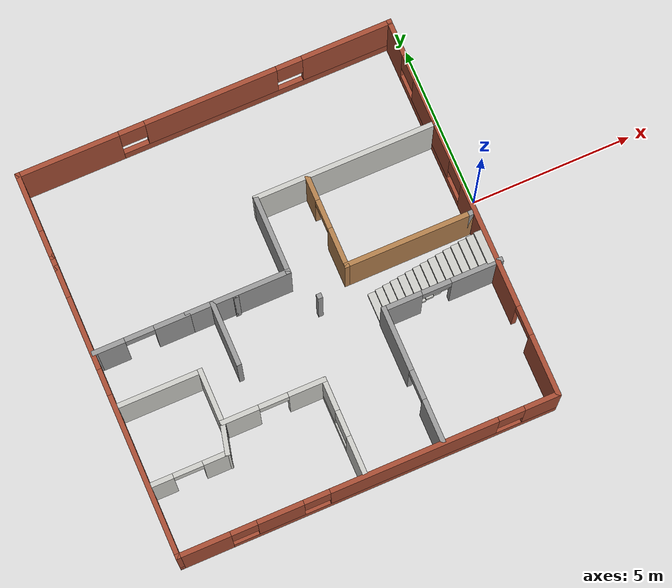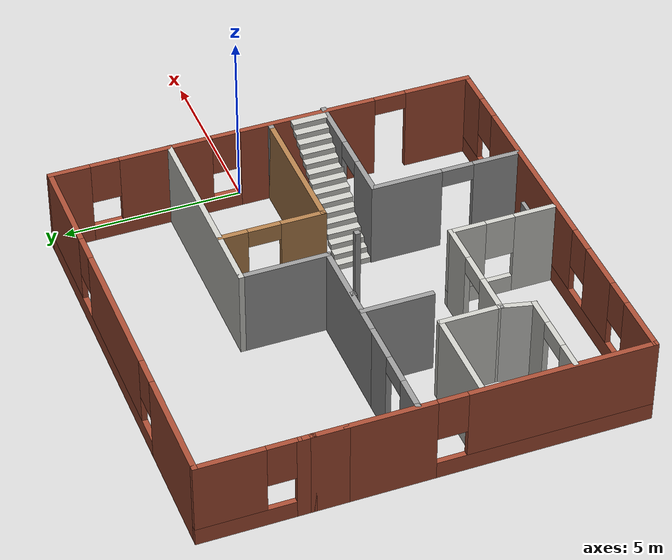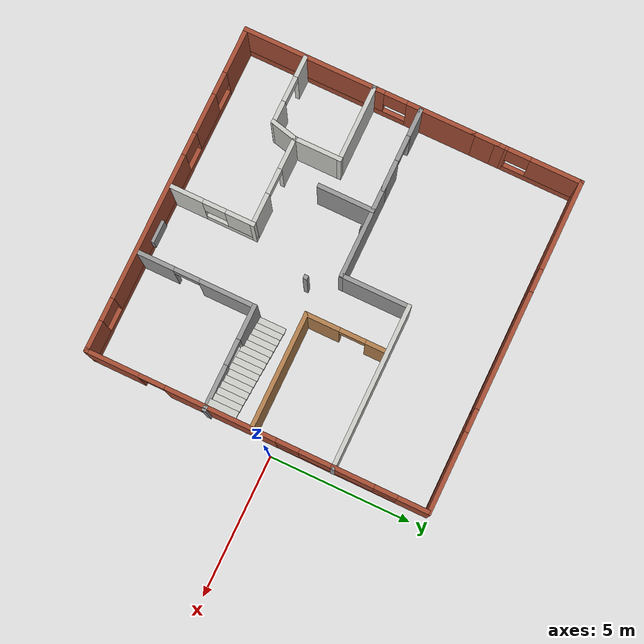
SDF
<sdf version="1.6">
 <model name="Building">
  <pose>-6.1852 -0.576906 0 0 -0 0</pose>
  <link name="Stairs_0">
   <visual name="Stairs_0_Visual_0">
    <pose>2.30777 -1.25113 0.083333 0 -0 1.5708</pose>
    <geometry><box><size>1 0.233333 0.166667</size></box></geometry>
    <material>
     <script><uri>file://media/materials/scripts/gazebo.material</uri><name>Gazebo/CeilingTiled</name></script>
     <ambient>1 1 1 1</ambient>
    </material>
    <meta><layer>0</layer></meta>
   </visual>
   <collision name="Stairs_0_Collision_0">
    <geometry><box><size>1 0.233333 0.166667</size></box></geometry>
    <pose>2.30777 -1.25113 0.083333 0 -0 1.5708</pose>
   </collision>
   <visual name="Stairs_0_Visual_1">
    <pose>2.5411 -1.25113 0.25 0 -0 1.5708</pose>
    <geometry><box><size>1 0.233333 0.166667</size></box></geometry>
    <material>
     <script><uri>file://media/materials/scripts/gazebo.material</uri><name>Gazebo/CeilingTiled</name></script>
     <ambient>1 1 1 1</ambient>
    </material>
    <meta><layer>0</layer></meta>
   </visual>
   <collision name="Stairs_0_Collision_1">
    <geometry><box><size>1 0.233333 0.166667</size></box></geometry>
    <pose>2.5411 -1.25113 0.25 0 -0 1.5708</pose>
   </collision>
   <visual name="Stairs_0_Visual_2">
    <pose>2.77444 -1.25113 0.416667 0 -0 1.5708</pose>
    <geometry><box><size>1 0.233333 0.166667</size></box></geometry>
    <material>
     <script><uri>file://media/materials/scripts/gazebo.material</uri><name>Gazebo/CeilingTiled</name></script>
     <ambient>1 1 1 1</ambient>
    </material>
    <meta><layer>0</layer></meta>
   </visual>
   <collision name="Stairs_0_Collision_2">
    <geometry><box><size>1 0.233333 0.166667</size></box></geometry>
    <pose>2.77444 -1.25113 0.416667 0 -0 1.5708</pose>
   </collision>
   <visual name="Stairs_0_Visual_3">
    <pose>3.00777 -1.25113 0.583333 0 -0 1.5708</pose>
    <geometry><box><size>1 0.233333 0.166667</size></box></geometry>
    <material>
     <script><uri>file://media/materials/scripts/gazebo.material</uri><name>Gazebo/CeilingTiled</name></script>
     <ambient>1 1 1 1</ambient>
    </material>
    <meta><layer>0</layer></meta>
   </visual>
   <collision name="Stairs_0_Collision_3">
    <geometry><box><size>1 0.233333 0.166667</size></box></geometry>
    <pose>3.00777 -1.25113 0.583333 0 -0 1.5708</pose>
   </collision>
   <visual name="Stairs_0_Visual_4">
    <pose>3.2411 -1.25113 0.75 0 -0 1.5708</pose>
    <geometry><box><size>1 0.233333 0.166667</size></box></geometry>
    <material>
     <script><uri>file://media/materials/scripts/gazebo.material</uri><name>Gazebo/CeilingTiled</name></script>
     <ambient>1 1 1 1</ambient>
    </material>
    <meta><layer>0</layer></meta>
   </visual>
   <collision name="Stairs_0_Collision_4">
    <geometry><box><size>1 0.233333 0.166667</size></box></geometry>
    <pose>3.2411 -1.25113 0.75 0 -0 1.5708</pose>
   </collision>
   <visual name="Stairs_0_Visual_5">
    <pose>3.47444 -1.25113 0.916667 0 -0 1.5708</pose>
    <geometry><box><size>1 0.233333 0.166667</size></box></geometry>
    <material>
     <script><uri>file://media/materials/scripts/gazebo.material</uri><name>Gazebo/CeilingTiled</name></script>
     <ambient>1 1 1 1</ambient>
    </material>
    <meta><layer>0</layer></meta>
   </visual>
   <collision name="Stairs_0_Collision_5">
    <geometry><box><size>1 0.233333 0.166667</size></box></geometry>
    <pose>3.47444 -1.25113 0.916667 0 -0 1.5708</pose>
   </collision>
   <visual name="Stairs_0_Visual_6">
    <pose>3.70777 -1.25113 1.08333 0 -0 1.5708</pose>
    <geometry><box><size>1 0.233333 0.166667</size></box></geometry>
    <material>
     <script><uri>file://media/materials/scripts/gazebo.material</uri><name>Gazebo/CeilingTiled</name></script>
     <ambient>1 1 1 1</ambient>
    </material>
    <meta><layer>0</layer></meta>
   </visual>
   <collision name="Stairs_0_Collision_6">
    <geometry><box><size>1 0.233333 0.166667</size></box></geometry>
    <pose>3.70777 -1.25113 1.08333 0 -0 1.5708</pose>
   </collision>
   <visual name="Stairs_0_Visual_7">
    <pose>3.9411 -1.25113 1.25 0 -0 1.5708</pose>
    <geometry><box><size>1 0.233333 0.166667</size></box></geometry>
    <material>
     <script><uri>file://media/materials/scripts/gazebo.material</uri><name>Gazebo/CeilingTiled</name></script>
     <ambient>1 1 1 1</ambient>
    </material>
    <meta><layer>0</layer></meta>
   </visual>
   <collision name="Stairs_0_Collision_7">
    <geometry><box><size>1 0.233333 0.166667</size></box></geometry>
    <pose>3.9411 -1.25113 1.25 0 -0 1.5708</pose>
   </collision>
   <visual name="Stairs_0_Visual_8">
    <pose>4.17444 -1.25113 1.41667 0 -0 1.5708</pose>
    <geometry><box><size>1 0.233333 0.166667</size></box></geometry>
    <material>
     <script><uri>file://media/materials/scripts/gazebo.material</uri><name>Gazebo/CeilingTiled</name></script>
     <ambient>1 1 1 1</ambient>
    </material>
    <meta><layer>0</layer></meta>
   </visual>
   <collision name="Stairs_0_Collision_8">
    <geometry><box><size>1 0.233333 0.166667</size></box></geometry>
    <pose>4.17444 -1.25113 1.41667 0 -0 1.5708</pose>
   </collision>
   <visual name="Stairs_0_Visual_9">
    <pose>4.40777 -1.25113 1.58333 0 -0 1.5708</pose>
    <geometry><box><size>1 0.233333 0.166667</size></box></geometry>
    <material>
     <script><uri>file://media/materials/scripts/gazebo.material</uri><name>Gazebo/CeilingTiled</name></script>
     <ambient>1 1 1 1</ambient>
    </material>
    <meta><layer>0</layer></meta>
   </visual>
   <collision name="Stairs_0_Collision_9">
    <geometry><box><size>1 0.233333 0.166667</size></box></geometry>
    <pose>4.40777 -1.25113 1.58333 0 -0 1.5708</pose>
   </collision>
   <visual name="Stairs_0_Visual_10">
    <pose>4.6411 -1.25113 1.75 0 -0 1.5708</pose>
    <geometry><box><size>1 0.233333 0.166667</size></box></geometry>
    <material>
     <script><uri>file://media/materials/scripts/gazebo.material</uri><name>Gazebo/CeilingTiled</name></script>
     <ambient>1 1 1 1</ambient>
    </material>
    <meta><layer>0</layer></meta>
   </visual>
   <collision name="Stairs_0_Collision_10">
    <geometry><box><size>1 0.233333 0.166667</size></box></geometry>
    <pose>4.6411 -1.25113 1.75 0 -0 1.5708</pose>
   </collision>
   <visual name="Stairs_0_Visual_11">
    <pose>4.87444 -1.25113 1.91667 0 -0 1.5708</pose>
    <geometry><box><size>1 0.233333 0.166667</size></box></geometry>
    <material>
     <script><uri>file://media/materials/scripts/gazebo.material</uri><name>Gazebo/CeilingTiled</name></script>
     <ambient>1 1 1 1</ambient>
    </material>
    <meta><layer>0</layer></meta>
   </visual>
   <collision name="Stairs_0_Collision_11">
    <geometry><box><size>1 0.233333 0.166667</size></box></geometry>
    <pose>4.87444 -1.25113 1.91667 0 -0 1.5708</pose>
   </collision>
   <visual name="Stairs_0_Visual_12">
    <pose>5.10777 -1.25113 2.08333 0 -0 1.5708</pose>
    <geometry><box><size>1 0.233333 0.166667</size></box></geometry>
    <material>
     <script><uri>file://media/materials/scripts/gazebo.material</uri><name>Gazebo/CeilingTiled</name></script>
     <ambient>1 1 1 1</ambient>
    </material>
    <meta><layer>0</layer></meta>
   </visual>
   <collision name="Stairs_0_Collision_12">
    <geometry><box><size>1 0.233333 0.166667</size></box></geometry>
    <pose>5.10777 -1.25113 2.08333 0 -0 1.5708</pose>
   </collision>
   <visual name="Stairs_0_Visual_13">
    <pose>5.3411 -1.25113 2.25 0 -0 1.5708</pose>
    <geometry><box><size>1 0.233333 0.166667</size></box></geometry>
    <material>
     <script><uri>file://media/materials/scripts/gazebo.material</uri><name>Gazebo/CeilingTiled</name></script>
     <ambient>1 1 1 1</ambient>
    </material>
    <meta><layer>0</layer></meta>
   </visual>
   <collision name="Stairs_0_Collision_13">
    <geometry><box><size>1 0.233333 0.166667</size></box></geometry>
    <pose>5.3411 -1.25113 2.25 0 -0 1.5708</pose>
   </collision>
   <visual name="Stairs_0_Visual_14">
    <pose>5.57444 -1.25113 2.41667 0 -0 1.5708</pose>
    <geometry><box><size>1 0.233333 0.166667</size></box></geometry>
    <material>
     <script><uri>file://media/materials/scripts/gazebo.material</uri><name>Gazebo/CeilingTiled</name></script>
     <ambient>1 1 1 1</ambient>
    </material>
    <meta><layer>0</layer></meta>
   </visual>
   <collision name="Stairs_0_Collision_14">
    <geometry><box><size>1 0.233333 0.166667</size></box></geometry>
    <pose>5.57444 -1.25113 2.41667 0 -0 1.5708</pose>
   </collision>
  </link>
  <link name="Wall_0">
   <pose>-5.83944 -1.9 0 0 0 -1.5708</pose>
   <visual name="Wall_0_Visual_0">
    <pose>-2.91813 0 1.25 0 -0 0</pose>
    <geometry><box><size>2.41374 0.15 2.5</size></box></geometry>
    <material>
     <script><uri>file://media/materials/scripts/gazebo.material</uri><name>Gazebo/Bricks</name></script>
     <ambient>1 1 1 1</ambient>
    </material>
    <meta><layer>0</layer></meta>
   </visual>
   <collision name="Wall_0_Collision_0">
    <geometry><box><size>2.41374 0.15 2.5</size></box></geometry>
    <pose>-2.91813 0 1.25 0 -0 0</pose>
   </collision>
   <visual name="Wall_0_Visual_1">
    <pose>1.20687 0 0.25 0 -0 0</pose>
    <geometry><box><size>5.83626 0.15 0.5</size></box></geometry>
    <material>
     <script><uri>file://media/materials/scripts/gazebo.material</uri><name>Gazebo/Bricks</name></script>
     <ambient>1 1 1 1</ambient>
    </material>
    <meta><layer>0</layer></meta>
   </visual>
   <collision name="Wall_0_Collision_1">
    <geometry><box><size>5.83626 0.15 0.5</size></box></geometry>
    <pose>1.20687 0 0.25 0 -0 0</pose>
   </collision>
   <visual name="Wall_0_Visual_2">
    <pose>1.60687 0 1.5 0 -0 0</pose>
    <geometry><box><size>5.03626 0.15 2</size></box></geometry>
    <material>
     <script><uri>file://media/materials/scripts/gazebo.material</uri><name>Gazebo/Bricks</name></script>
     <ambient>1 1 1 1</ambient>
    </material>
    <meta><layer>0</layer></meta>
   </visual>
   <collision name="Wall_0_Collision_2">
    <geometry><box><size>5.03626 0.15 2</size></box></geometry>
    <pose>1.60687 0 1.5 0 -0 0</pose>
   </collision>
   <visual name="Wall_0_Visual_3">
    <pose>-1.31126 0 1.9 0 -0 0</pose>
    <geometry><box><size>0.8 0.15 1.2</size></box></geometry>
    <material>
     <script><uri>file://media/materials/scripts/gazebo.material</uri><name>Gazebo/Bricks</name></script>
     <ambient>1 1 1 1</ambient>
    </material>
    <meta><layer>0</layer></meta>
   </visual>
   <collision name="Wall_0_Collision_3">
    <geometry><box><size>0.8 0.15 1.2</size></box></geometry>
    <pose>-1.31126 0 1.9 0 -0 0</pose>
   </collision>
  </link>
  <link name="Wall_1">
   <pose>-0.039438 -5.95 0 0 -0 0</pose>
   <visual name="Wall_1_Visual_0">
    <pose>-5.03898 0 1.25 0 -0 0</pose>
    <geometry><box><size>1.67205 0.15 2.5</size></box></geometry>
    <material>
     <script><uri>file://media/materials/scripts/gazebo.material</uri><name>Gazebo/Bricks</name></script>
     <ambient>1 1 1 1</ambient>
    </material>
    <meta><layer>0</layer></meta>
   </visual>
   <collision name="Wall_1_Collision_0">
    <geometry><box><size>1.67205 0.15 2.5</size></box></geometry>
    <pose>-5.03898 0 1.25 0 -0 0</pose>
   </collision>
   <visual name="Wall_1_Visual_1">
    <pose>0.836024 0 0.25 0 -0 0</pose>
    <geometry><box><size>10.078 0.15 0.5</size></box></geometry>
    <material>
     <script><uri>file://media/materials/scripts/gazebo.material</uri><name>Gazebo/Bricks</name></script>
     <ambient>1 1 1 1</ambient>
    </material>
    <meta><layer>0</layer></meta>
   </visual>
   <collision name="Wall_1_Collision_1">
    <geometry><box><size>10.078 0.15 0.5</size></box></geometry>
    <pose>0.836024 0 0.25 0 -0 0</pose>
   </collision>
   <visual name="Wall_1_Visual_2">
    <pose>-2.69545 0 1.5 0 -0 0</pose>
    <geometry><box><size>1.415 0.15 2</size></box></geometry>
    <material>
     <script><uri>file://media/materials/scripts/gazebo.material</uri><name>Gazebo/Bricks</name></script>
     <ambient>1 1 1 1</ambient>
    </material>
    <meta><layer>0</layer></meta>
   </visual>
   <collision name="Wall_1_Collision_2">
    <geometry><box><size>1.415 0.15 2</size></box></geometry>
    <pose>-2.69545 0 1.5 0 -0 0</pose>
   </collision>
   <visual name="Wall_1_Visual_3">
    <pose>1.38846 0 1.5 0 -0 0</pose>
    <geometry><box><size>5.15282 0.15 2</size></box></geometry>
    <material>
     <script><uri>file://media/materials/scripts/gazebo.material</uri><name>Gazebo/Bricks</name></script>
     <ambient>1 1 1 1</ambient>
    </material>
    <meta><layer>0</layer></meta>
   </visual>
   <collision name="Wall_1_Collision_3">
    <geometry><box><size>5.15282 0.15 2</size></box></geometry>
    <pose>1.38846 0 1.5 0 -0 0</pose>
   </collision>
   <visual name="Wall_1_Visual_4">
    <pose>5.31994 0 1.5 0 -0 0</pose>
    <geometry><box><size>1.11013 0.15 2</size></box></geometry>
    <material>
     <script><uri>file://media/materials/scripts/gazebo.material</uri><name>Gazebo/Bricks</name></script>
     <ambient>1 1 1 1</ambient>
    </material>
    <meta><layer>0</layer></meta>
   </visual>
   <collision name="Wall_1_Collision_4">
    <geometry><box><size>1.11013 0.15 2</size></box></geometry>
    <pose>5.31994 0 1.5 0 -0 0</pose>
   </collision>
   <visual name="Wall_1_Visual_5">
    <pose>-3.80295 0 1.9 0 -0 0</pose>
    <geometry><box><size>0.8 0.15 1.2</size></box></geometry>
    <material>
     <script><uri>file://media/materials/scripts/gazebo.material</uri><name>Gazebo/Bricks</name></script>
     <ambient>1 1 1 1</ambient>
    </material>
    <meta><layer>0</layer></meta>
   </visual>
   <collision name="Wall_1_Collision_5">
    <geometry><box><size>0.8 0.15 1.2</size></box></geometry>
    <pose>-3.80295 0 1.9 0 -0 0</pose>
   </collision>
   <visual name="Wall_1_Visual_6">
    <pose>-1.58795 0 1.9 0 -0 0</pose>
    <geometry><box><size>0.8 0.15 1.2</size></box></geometry>
    <material>
     <script><uri>file://media/materials/scripts/gazebo.material</uri><name>Gazebo/Bricks</name></script>
     <ambient>1 1 1 1</ambient>
    </material>
    <meta><layer>0</layer></meta>
   </visual>
   <collision name="Wall_1_Collision_6">
    <geometry><box><size>0.8 0.15 1.2</size></box></geometry>
    <pose>-1.58795 0 1.9 0 -0 0</pose>
   </collision>
   <visual name="Wall_1_Visual_7">
    <pose>4.36487 0 1.9 0 -0 0</pose>
    <geometry><box><size>0.8 0.15 1.2</size></box></geometry>
    <material>
     <script><uri>file://media/materials/scripts/gazebo.material</uri><name>Gazebo/Bricks</name></script>
     <ambient>1 1 1 1</ambient>
    </material>
    <meta><layer>0</layer></meta>
   </visual>
   <collision name="Wall_1_Collision_7">
    <geometry><box><size>0.8 0.15 1.2</size></box></geometry>
    <pose>4.36487 0 1.9 0 -0 0</pose>
   </collision>
  </link>
  <link name="Wall_10">
   <pose>4.03944 -1.77537 0 0 -0 0</pose>
   <visual name="Wall_10_Visual_0">
    <pose>-1.25521 0 1.25 0 -0 0</pose>
    <geometry><box><size>1.23958 0.15 2.5</size></box></geometry>
    <material>
     <script><uri>file://media/materials/scripts/gazebo.material</uri><name>Gazebo/Grey</name></script>
     <ambient>1 1 1 1</ambient>
    </material>
    <meta><layer>0</layer></meta>
   </visual>
   <collision name="Wall_10_Collision_0">
    <geometry><box><size>1.23958 0.15 2.5</size></box></geometry>
    <pose>-1.25521 0 1.25 0 -0 0</pose>
   </collision>
   <visual name="Wall_10_Visual_1">
    <pose>1.06979 0 1.25 0 -0 0</pose>
    <geometry><box><size>1.61042 0.15 2.5</size></box></geometry>
    <material>
     <script><uri>file://media/materials/scripts/gazebo.material</uri><name>Gazebo/Grey</name></script>
     <ambient>1 1 1 1</ambient>
    </material>
    <meta><layer>0</layer></meta>
   </visual>
   <collision name="Wall_10_Collision_1">
    <geometry><box><size>1.61042 0.15 2.5</size></box></geometry>
    <pose>1.06979 0 1.25 0 -0 0</pose>
   </collision>
   <visual name="Wall_10_Visual_2">
    <pose>-0.185424 0 2.25 0 -0 0</pose>
    <geometry><box><size>0.9 0.15 0.5</size></box></geometry>
    <material>
     <script><uri>file://media/materials/scripts/gazebo.material</uri><name>Gazebo/Grey</name></script>
     <ambient>1 1 1 1</ambient>
    </material>
    <meta><layer>0</layer></meta>
   </visual>
   <collision name="Wall_10_Collision_2">
    <geometry><box><size>0.9 0.15 0.5</size></box></geometry>
    <pose>-0.185424 0 2.25 0 -0 0</pose>
   </collision>
  </link>
  <link name="Wall_12">
   <pose>-0.133296 -4.39447 0 0 -0 1.5708</pose>
   <visual name="Wall_12_Visual_0">
    <pose>-0.916045 0 1.25 0 -0 0</pose>
    <geometry><box><size>1.16791 0.15 2.5</size></box></geometry>
    <material>
     <script><uri>file://media/materials/scripts/gazebo.material</uri><name>Gazebo/CeilingTiled</name></script>
     <ambient>0.760784 0.662745 0.627451 1</ambient>
    </material>
    <meta><layer>0</layer></meta>
   </visual>
   <collision name="Wall_12_Collision_0">
    <geometry><box><size>1.16791 0.15 2.5</size></box></geometry>
    <pose>-0.916045 0 1.25 0 -0 0</pose>
   </collision>
   <visual name="Wall_12_Visual_1">
    <pose>0.583955 0 0.25 0 -0 0</pose>
    <geometry><box><size>1.83209 0.15 0.5</size></box></geometry>
    <material>
     <script><uri>file://media/materials/scripts/gazebo.material</uri><name>Gazebo/CeilingTiled</name></script>
     <ambient>0.760784 0.662745 0.627451 1</ambient>
    </material>
    <meta><layer>0</layer></meta>
   </visual>
   <collision name="Wall_12_Collision_1">
    <geometry><box><size>1.83209 0.15 0.5</size></box></geometry>
    <pose>0.583955 0 0.25 0 -0 0</pose>
   </collision>
   <visual name="Wall_12_Visual_2">
    <pose>0.983955 0 1.5 0 -0 0</pose>
    <geometry><box><size>1.03209 0.15 2</size></box></geometry>
    <material>
     <script><uri>file://media/materials/scripts/gazebo.material</uri><name>Gazebo/CeilingTiled</name></script>
     <ambient>0.760784 0.662745 0.627451 1</ambient>
    </material>
    <meta><layer>0</layer></meta>
   </visual>
   <collision name="Wall_12_Collision_2">
    <geometry><box><size>1.03209 0.15 2</size></box></geometry>
    <pose>0.983955 0 1.5 0 -0 0</pose>
   </collision>
   <visual name="Wall_12_Visual_3">
    <pose>0.06791 0 1.9 0 -0 0</pose>
    <geometry><box><size>0.8 0.15 1.2</size></box></geometry>
    <material>
     <script><uri>file://media/materials/scripts/gazebo.material</uri><name>Gazebo/CeilingTiled</name></script>
     <ambient>0.760784 0.662745 0.627451 1</ambient>
    </material>
    <meta><layer>0</layer></meta>
   </visual>
   <collision name="Wall_12_Collision_3">
    <geometry><box><size>0.8 0.15 1.2</size></box></geometry>
    <pose>0.06791 0 1.9 0 -0 0</pose>
   </collision>
  </link>
  <link name="Wall_13">
   <pose>-1.6833 -2.96947 0 0 -0 3.14159</pose>
   <visual name="Wall_13_Visual_0">
    <pose>-1.03974 0 1.25 0 -0 0</pose>
    <geometry><box><size>1.17053 0.15 2.5</size></box></geometry>
    <material>
     <script><uri>file://media/materials/scripts/gazebo.material</uri><name>Gazebo/CeilingTiled</name></script>
     <ambient>0.760784 0.662745 0.627451 1</ambient>
    </material>
    <meta><layer>0</layer></meta>
   </visual>
   <collision name="Wall_13_Collision_0">
    <geometry><box><size>1.17053 0.15 2.5</size></box></geometry>
    <pose>-1.03974 0 1.25 0 -0 0</pose>
   </collision>
   <visual name="Wall_13_Visual_1">
    <pose>1.03527 0 1.25 0 -0 0</pose>
    <geometry><box><size>1.17947 0.15 2.5</size></box></geometry>
    <material>
     <script><uri>file://media/materials/scripts/gazebo.material</uri><name>Gazebo/CeilingTiled</name></script>
     <ambient>0.760784 0.662745 0.627451 1</ambient>
    </material>
    <meta><layer>0</layer></meta>
   </visual>
   <collision name="Wall_13_Collision_1">
    <geometry><box><size>1.17947 0.15 2.5</size></box></geometry>
    <pose>1.03527 0 1.25 0 -0 0</pose>
   </collision>
   <visual name="Wall_13_Visual_2">
    <pose>-0.00447 0 2.25 0 -0 0</pose>
    <geometry><box><size>0.9 0.15 0.5</size></box></geometry>
    <material>
     <script><uri>file://media/materials/scripts/gazebo.material</uri><name>Gazebo/CeilingTiled</name></script>
     <ambient>0.760784 0.662745 0.627451 1</ambient>
    </material>
    <meta><layer>0</layer></meta>
   </visual>
   <collision name="Wall_13_Collision_2">
    <geometry><box><size>0.9 0.15 0.5</size></box></geometry>
    <pose>-0.00447 0 2.25 0 -0 0</pose>
   </collision>
  </link>
  <link name="Wall_14">
   <collision name="Wall_14_Collision">
    <geometry><box><size>1.75 0.15 2.5</size></box></geometry>
    <pose>0 0 1.25 0 -0 0</pose>
   </collision>
   <visual name="Wall_14_Visual">
    <pose>0 0 1.25 0 -0 0</pose>
    <geometry><box><size>1.75 0.15 2.5</size></box></geometry>
    <material>
     <script><uri>file://media/materials/scripts/gazebo.material</uri><name>Gazebo/CeilingTiled</name></script>
     <ambient>1 1 1 1</ambient>
    </material>
    <meta><layer>0</layer></meta>
   </visual>
   <pose>-3.2333 -2.16947 0 0 -0 1.5708</pose>
  </link>
  <link name="Wall_15">
   <collision name="Wall_15_Collision">
    <geometry><box><size>2.75 0.15 2.5</size></box></geometry>
    <pose>0 0 1.25 0 -0 0</pose>
   </collision>
   <visual name="Wall_15_Visual">
    <pose>0 0 1.25 0 -0 0</pose>
    <geometry><box><size>2.75 0.15 2.5</size></box></geometry>
    <material>
     <script><uri>file://media/materials/scripts/gazebo.material</uri><name>Gazebo/CeilingTiled</name></script>
     <ambient>1 1 1 1</ambient>
    </material>
    <meta><layer>0</layer></meta>
   </visual>
   <pose>-4.5333 -1.36947 0 0 -0 3.14159</pose>
  </link>
  <link name="Wall_16">
   <collision name="Wall_16_Collision">
    <geometry><box><size>0.15 0.15 2.5</size></box></geometry>
    <pose>0 0 1.25 0 -0 0</pose>
   </collision>
   <visual name="Wall_16_Visual">
    <pose>0 0 1.25 0 -0 0</pose>
    <geometry><box><size>0.15 0.15 2.5</size></box></geometry>
    <material>
     <script><uri>file://media/materials/scripts/gazebo.material</uri><name>Gazebo/Grey</name></script>
     <ambient>1 1 1 1</ambient>
    </material>
    <meta><layer>0</layer></meta>
   </visual>
   <pose>-5.8333 -1.36947 0 0 -0 0</pose>
  </link>
  <link name="Wall_18">
   <pose>1.7604 1.2188 0 0 0 -1.5708</pose>
   <visual name="Wall_18_Visual_0">
    <pose>-1.07615 0 1.25 0 -0 0</pose>
    <geometry><box><size>0.804732 0.15 2.5</size></box></geometry>
    <material>
     <script><uri>file://media/materials/scripts/gazebo.material</uri><name>Gazebo/Wood</name></script>
     <ambient>1 1 1 1</ambient>
    </material>
    <meta><layer>0</layer></meta>
   </visual>
   <collision name="Wall_18_Collision_0">
    <geometry><box><size>0.804732 0.15 2.5</size></box></geometry>
    <pose>-1.07615 0 1.25 0 -0 0</pose>
   </collision>
   <visual name="Wall_18_Visual_1">
    <pose>0.852366 0 1.25 0 -0 0</pose>
    <geometry><box><size>1.2523 0.15 2.5</size></box></geometry>
    <material>
     <script><uri>file://media/materials/scripts/gazebo.material</uri><name>Gazebo/Wood</name></script>
     <ambient>1 1 1 1</ambient>
    </material>
    <meta><layer>0</layer></meta>
   </visual>
   <collision name="Wall_18_Collision_1">
    <geometry><box><size>1.2523 0.15 2.5</size></box></geometry>
    <pose>0.852366 0 1.25 0 -0 0</pose>
   </collision>
   <visual name="Wall_18_Visual_2">
    <pose>-0.223783 0 2.25 0 -0 0</pose>
    <geometry><box><size>0.9 0.15 0.5</size></box></geometry>
    <material>
     <script><uri>file://media/materials/scripts/gazebo.material</uri><name>Gazebo/Wood</name></script>
     <ambient>1 1 1 1</ambient>
    </material>
    <meta><layer>0</layer></meta>
   </visual>
   <collision name="Wall_18_Collision_2">
    <geometry><box><size>0.9 0.15 0.5</size></box></geometry>
    <pose>-0.223783 0 2.25 0 -0 0</pose>
   </collision>
  </link>
  <link name="Wall_19">
   <collision name="Wall_19_Collision">
    <geometry><box><size>4 0.15 2.5</size></box></geometry>
    <pose>0 0 1.25 0 -0 0</pose>
   </collision>
   <visual name="Wall_19_Visual">
    <pose>0 0 1.25 0 -0 0</pose>
    <geometry><box><size>4 0.15 2.5</size></box></geometry>
    <material>
     <script><uri>file://media/materials/scripts/gazebo.material</uri><name>Gazebo/Wood</name></script>
     <ambient>1 1 1 1</ambient>
    </material>
    <meta><layer>0</layer></meta>
   </visual>
   <pose>3.69833 -0.184696 0 0 -0 0</pose>
  </link>
  <link name="Wall_2">
   <pose>5.76056 -1.65 0 0 -0 1.5708</pose>
   <visual name="Wall_2_Visual_0">
    <pose>-3.41528 0 1.25 0 -0 0</pose>
    <geometry><box><size>1.91943 0.15 2.5</size></box></geometry>
    <material>
     <script><uri>file://media/materials/scripts/gazebo.material</uri><name>Gazebo/Bricks</name></script>
     <ambient>1 1 1 1</ambient>
    </material>
    <meta><layer>0</layer></meta>
   </visual>
   <collision name="Wall_2_Collision_0">
    <geometry><box><size>1.91943 0.15 2.5</size></box></geometry>
    <pose>-3.41528 0 1.25 0 -0 0</pose>
   </collision>
   <visual name="Wall_2_Visual_1">
    <pose>0.38347 0 1.25 0 -0 0</pose>
    <geometry><box><size>3.87808 0.15 2.5</size></box></geometry>
    <material>
     <script><uri>file://media/materials/scripts/gazebo.material</uri><name>Gazebo/Bricks</name></script>
     <ambient>1 1 1 1</ambient>
    </material>
    <meta><layer>0</layer></meta>
   </visual>
   <collision name="Wall_2_Collision_1">
    <geometry><box><size>3.87808 0.15 2.5</size></box></geometry>
    <pose>0.38347 0 1.25 0 -0 0</pose>
   </collision>
   <visual name="Wall_2_Visual_2">
    <pose>3.34875 0 0.25 0 -0 0</pose>
    <geometry><box><size>2.05249 0.15 0.5</size></box></geometry>
    <material>
     <script><uri>file://media/materials/scripts/gazebo.material</uri><name>Gazebo/Bricks</name></script>
     <ambient>1 1 1 1</ambient>
    </material>
    <meta><layer>0</layer></meta>
   </visual>
   <collision name="Wall_2_Collision_2">
    <geometry><box><size>2.05249 0.15 0.5</size></box></geometry>
    <pose>3.34875 0 0.25 0 -0 0</pose>
   </collision>
   <visual name="Wall_2_Visual_3">
    <pose>3.74875 0 1.5 0 -0 0</pose>
    <geometry><box><size>1.25249 0.15 2</size></box></geometry>
    <material>
     <script><uri>file://media/materials/scripts/gazebo.material</uri><name>Gazebo/Bricks</name></script>
     <ambient>1 1 1 1</ambient>
    </material>
    <meta><layer>0</layer></meta>
   </visual>
   <collision name="Wall_2_Collision_3">
    <geometry><box><size>1.25249 0.15 2</size></box></geometry>
    <pose>3.74875 0 1.5 0 -0 0</pose>
   </collision>
   <visual name="Wall_2_Visual_4">
    <pose>2.72251 0 1.9 0 -0 0</pose>
    <geometry><box><size>0.8 0.15 1.2</size></box></geometry>
    <material>
     <script><uri>file://media/materials/scripts/gazebo.material</uri><name>Gazebo/Bricks</name></script>
     <ambient>1 1 1 1</ambient>
    </material>
    <meta><layer>0</layer></meta>
   </visual>
   <collision name="Wall_2_Collision_4">
    <geometry><box><size>0.8 0.15 1.2</size></box></geometry>
    <pose>2.72251 0 1.9 0 -0 0</pose>
   </collision>
   <visual name="Wall_2_Visual_5">
    <pose>-2.00557 0 2.25 0 -0 0</pose>
    <geometry><box><size>0.9 0.15 0.5</size></box></geometry>
    <material>
     <script><uri>file://media/materials/scripts/gazebo.material</uri><name>Gazebo/Bricks</name></script>
     <ambient>1 1 1 1</ambient>
    </material>
    <meta><layer>0</layer></meta>
   </visual>
   <collision name="Wall_2_Collision_5">
    <geometry><box><size>0.9 0.15 0.5</size></box></geometry>
    <pose>-2.00557 0 2.25 0 -0 0</pose>
   </collision>
  </link>
  <link name="Wall_20">
   <collision name="Wall_20_Collision">
    <geometry><box><size>0.15 0.15 2.5</size></box></geometry>
    <pose>0 0 1.25 0 -0 0</pose>
   </collision>
   <visual name="Wall_20_Visual">
    <pose>0 0 1.25 0 -0 0</pose>
    <geometry><box><size>0.15 0.15 2.5</size></box></geometry>
    <material>
     <script><uri>file://media/materials/scripts/gazebo.material</uri><name>Gazebo/Grey</name></script>
     <ambient>1 1 1 1</ambient>
    </material>
    <meta><layer>0</layer></meta>
   </visual>
   <pose>5.62333 -0.184696 0 0 -0 0</pose>
  </link>
  <link name="Wall_22">
   <pose>-4.36444 0.3 0 0 -0 3.14159</pose>
   <visual name="Wall_22_Visual_0">
    <pose>-0.951516 0 1.25 0 -0 0</pose>
    <geometry><box><size>1.09697 0.15 2.5</size></box></geometry>
    <material>
     <script><uri>file://media/materials/scripts/gazebo.material</uri><name>Gazebo/Grey</name></script>
     <ambient>1 1 1 1</ambient>
    </material>
    <meta><layer>0</layer></meta>
   </visual>
   <collision name="Wall_22_Collision_0">
    <geometry><box><size>1.09697 0.15 2.5</size></box></geometry>
    <pose>-0.951516 0 1.25 0 -0 0</pose>
   </collision>
   <visual name="Wall_22_Visual_1">
    <pose>0.998484 0 1.25 0 -0 0</pose>
    <geometry><box><size>1.00303 0.15 2.5</size></box></geometry>
    <material>
     <script><uri>file://media/materials/scripts/gazebo.material</uri><name>Gazebo/Grey</name></script>
     <ambient>1 1 1 1</ambient>
    </material>
    <meta><layer>0</layer></meta>
   </visual>
   <collision name="Wall_22_Collision_1">
    <geometry><box><size>1.00303 0.15 2.5</size></box></geometry>
    <pose>0.998484 0 1.25 0 -0 0</pose>
   </collision>
   <visual name="Wall_22_Visual_2">
    <pose>0.046968 0 2.25 0 -0 0</pose>
    <geometry><box><size>0.9 0.15 0.5</size></box></geometry>
    <material>
     <script><uri>file://media/materials/scripts/gazebo.material</uri><name>Gazebo/Grey</name></script>
     <ambient>1 1 1 1</ambient>
    </material>
    <meta><layer>0</layer></meta>
   </visual>
   <collision name="Wall_22_Collision_2">
    <geometry><box><size>0.9 0.15 0.5</size></box></geometry>
    <pose>0.046968 0 2.25 0 -0 0</pose>
   </collision>
  </link>
  <link name="Wall_23">
   <collision name="Wall_23_Collision">
    <geometry><box><size>0.15 0.15 2.5</size></box></geometry>
    <pose>0 0 1.25 0 -0 0</pose>
   </collision>
   <visual name="Wall_23_Visual">
    <pose>0 0 1.25 0 -0 0</pose>
    <geometry><box><size>0.15 0.15 2.5</size></box></geometry>
    <material>
     <script><uri>file://media/materials/scripts/gazebo.material</uri><name>Gazebo/Grey</name></script>
     <ambient>1 1 1 1</ambient>
    </material>
    <meta><layer>0</layer></meta>
   </visual>
   <pose>-5.78944 0.3 0 0 -0 0</pose>
  </link>
  <link name="Wall_25">
   <collision name="Wall_25_Collision">
    <geometry><box><size>2 0.15 2.5</size></box></geometry>
    <pose>0 0 1.25 0 -0 0</pose>
   </collision>
   <visual name="Wall_25_Visual">
    <pose>0 0 1.25 0 -0 0</pose>
    <geometry><box><size>2 0.15 2.5</size></box></geometry>
    <material>
     <script><uri>file://media/materials/scripts/gazebo.material</uri><name>Gazebo/Grey</name></script>
     <ambient>1 1 1 1</ambient>
    </material>
    <meta><layer>0</layer></meta>
   </visual>
   <pose>-2.16346 -0.644844 0 0 0 -1.5708</pose>
  </link>
  <link name="Wall_28">
   <collision name="Wall_28_Collision">
    <geometry><box><size>0.15 0.15 2.5</size></box></geometry>
    <pose>0 0 1.25 0 -0 0</pose>
   </collision>
   <visual name="Wall_28_Visual">
    <pose>0 0 1.25 0 -0 0</pose>
    <geometry><box><size>0.15 0.15 2.5</size></box></geometry>
    <material>
     <script><uri>file://media/materials/scripts/gazebo.material</uri><name>Gazebo/Grey</name></script>
     <ambient>1 1 1 1</ambient>
    </material>
    <meta><layer>0</layer></meta>
   </visual>
   <pose>0.160561 0.3 0 0 -0 0</pose>
  </link>
  <link name="Wall_3">
   <collision name="Wall_3_Collision">
    <geometry><box><size>5.75 0.15 2.5</size></box></geometry>
    <pose>0 0 1.25 0 -0 0</pose>
   </collision>
   <visual name="Wall_3_Visual">
    <pose>0 0 1.25 0 -0 0</pose>
    <geometry><box><size>5.75 0.15 2.5</size></box></geometry>
    <material>
     <script><uri>file://media/materials/scripts/gazebo.material</uri><name>Gazebo/CeilingTiled</name></script>
     <ambient>1 1 1 1</ambient>
    </material>
    <meta><layer>0</layer></meta>
   </visual>
   <pose>2.96056 2.65 0 0 -0 3.14159</pose>
  </link>
  <link name="Wall_30">
   <pose>-4.61314 -3.81517 0 0 -0 0</pose>
   <visual name="Wall_30_Visual_0">
    <pose>-0.862208 0 1.25 0 -0 0</pose>
    <geometry><box><size>0.775583 0.15 2.5</size></box></geometry>
    <material>
     <script><uri>file://media/materials/scripts/gazebo.material</uri><name>Gazebo/CeilingTiled</name></script>
     <ambient>0.760784 0.662745 0.627451 1</ambient>
    </material>
    <meta><layer>0</layer></meta>
   </visual>
   <collision name="Wall_30_Collision_0">
    <geometry><box><size>0.775583 0.15 2.5</size></box></geometry>
    <pose>-0.862208 0 1.25 0 -0 0</pose>
   </collision>
   <visual name="Wall_30_Visual_1">
    <pose>0.837792 0 1.25 0 -0 0</pose>
    <geometry><box><size>0.824417 0.15 2.5</size></box></geometry>
    <material>
     <script><uri>file://media/materials/scripts/gazebo.material</uri><name>Gazebo/CeilingTiled</name></script>
     <ambient>0.760784 0.662745 0.627451 1</ambient>
    </material>
    <meta><layer>0</layer></meta>
   </visual>
   <collision name="Wall_30_Collision_1">
    <geometry><box><size>0.824417 0.15 2.5</size></box></geometry>
    <pose>0.837792 0 1.25 0 -0 0</pose>
   </collision>
   <visual name="Wall_30_Visual_2">
    <pose>-0.024417 0 2.25 0 -0 0</pose>
    <geometry><box><size>0.9 0.15 0.5</size></box></geometry>
    <material>
     <script><uri>file://media/materials/scripts/gazebo.material</uri><name>Gazebo/CeilingTiled</name></script>
     <ambient>0.760784 0.662745 0.627451 1</ambient>
    </material>
    <meta><layer>0</layer></meta>
   </visual>
   <collision name="Wall_30_Collision_2">
    <geometry><box><size>0.9 0.15 0.5</size></box></geometry>
    <pose>-0.024417 0 2.25 0 -0 0</pose>
   </collision>
  </link>
  <link name="Wall_31">
   <collision name="Wall_31_Collision">
    <geometry><box><size>1.02015 0.15 2.5</size></box></geometry>
    <pose>0 0 1.25 0 -0 0</pose>
   </collision>
   <visual name="Wall_31_Visual">
    <pose>0 0 1.25 0 -0 0</pose>
    <geometry><box><size>1.02015 0.15 2.5</size></box></geometry>
    <material>
     <script><uri>file://media/materials/scripts/gazebo.material</uri><name>Gazebo/CeilingTiled</name></script>
     <ambient>0.760784 0.662745 0.627451 1</ambient>
    </material>
    <meta><layer>0</layer></meta>
   </visual>
   <pose>-3.33572 -3.39232 0 0 -0 1.33316</pose>
  </link>
  <link name="Wall_32">
   <collision name="Wall_32_Collision">
    <geometry><box><size>0.15 0.15 2.5</size></box></geometry>
    <pose>0 0 1.25 0 -0 0</pose>
   </collision>
   <visual name="Wall_32_Visual">
    <pose>0 0 1.25 0 -0 0</pose>
    <geometry><box><size>0.15 0.15 2.5</size></box></geometry>
    <material>
     <script><uri>file://media/materials/scripts/gazebo.material</uri><name>Gazebo/Grey</name></script>
     <ambient>1 1 1 1</ambient>
    </material>
    <meta><layer>0</layer></meta>
   </visual>
   <pose>-3.2333 -2.96947 0 0 -0 0</pose>
  </link>
  <link name="Wall_35">
   <collision name="Wall_35_Collision">
    <geometry><box><size>0.15 0.15 2.5</size></box></geometry>
    <pose>0 0 1.25 0 -0 0</pose>
   </collision>
   <visual name="Wall_35_Visual">
    <pose>0 0 1.25 0 -0 0</pose>
    <geometry><box><size>0.15 0.15 2.5</size></box></geometry>
    <material>
     <script><uri>file://media/materials/scripts/gazebo.material</uri><name>Gazebo/Grey</name></script>
     <ambient>1 1 1 1</ambient>
    </material>
    <meta><layer>0</layer></meta>
   </visual>
   <pose>0.698568 -0.70703 0 0 -0 0</pose>
  </link>
  <link name="Wall_37">
   <collision name="Wall_37_Collision">
    <geometry><box><size>1 0.15 2.5</size></box></geometry>
    <pose>0 0 1.25 0 -0 0</pose>
   </collision>
   <visual name="Wall_37_Visual">
    <pose>0 0 1.25 0 -0 0</pose>
    <geometry><box><size>1 0.15 2.5</size></box></geometry>
    <material>
     <script><uri>file://media/materials/scripts/gazebo.material</uri><name>Gazebo/Bricks</name></script>
     <ambient>1 1 1 1</ambient>
    </material>
    <meta><layer>0</layer></meta>
   </visual>
   <pose>-5.83944 2.575 0 0 -0 1.5708</pose>
  </link>
  <link name="Wall_38">
   <collision name="Wall_38_Collision">
    <geometry><box><size>0.5 0.15 2.5</size></box></geometry>
    <pose>0 0 1.25 0 -0 0</pose>
   </collision>
   <visual name="Wall_38_Visual">
    <pose>0 0 1.25 0 -0 0</pose>
    <geometry><box><size>0.5 0.15 2.5</size></box></geometry>
    <material>
     <script><uri>file://media/materials/scripts/gazebo.material</uri><name>Gazebo/Bricks</name></script>
     <ambient>1 1 1 1</ambient>
    </material>
    <meta><layer>0</layer></meta>
   </visual>
   <pose>-5.83944 3.175 0 0 -0 1.5708</pose>
  </link>
  <link name="Wall_4">
   <collision name="Wall_4_Collision">
    <geometry><box><size>2.5 0.15 2.5</size></box></geometry>
    <pose>0 0 1.25 0 -0 0</pose>
   </collision>
   <visual name="Wall_4_Visual">
    <pose>0 0 1.25 0 -0 0</pose>
    <geometry><box><size>2.5 0.15 2.5</size></box></geometry>
    <material>
     <script><uri>file://media/materials/scripts/gazebo.material</uri><name>Gazebo/Grey</name></script>
     <ambient>1 1 1 1</ambient>
    </material>
    <meta><layer>0</layer></meta>
   </visual>
   <pose>0.160561 1.475 0 0 0 -1.5708</pose>
  </link>
  <link name="Wall_41">
   <collision name="Wall_41_Collision">
    <geometry><box><size>0.16 0.15 2.5</size></box></geometry>
    <pose>0 0 1.25 0 -0 0</pose>
   </collision>
   <visual name="Wall_41_Visual">
    <pose>0 0 1.25 0 -0 0</pose>
    <geometry><box><size>0.16 0.15 2.5</size></box></geometry>
    <material>
     <script><uri>file://media/materials/scripts/gazebo.material</uri><name>Gazebo/Grey</name></script>
     <ambient>1 1 1 1</ambient>
    </material>
    <meta><layer>0</layer></meta>
   </visual>
   <pose>-1.48444 0.25 0 0 -0 0</pose>
  </link>
  <link name="Wall_42">
   <collision name="Wall_42_Collision">
    <geometry><box><size>0.16 0.15 2.5</size></box></geometry>
    <pose>0 0 1.25 0 -0 0</pose>
   </collision>
   <visual name="Wall_42_Visual">
    <pose>0 0 1.25 0 -0 0</pose>
    <geometry><box><size>0.16 0.15 2.5</size></box></geometry>
    <material>
     <script><uri>file://media/materials/scripts/gazebo.material</uri><name>Gazebo/Grey</name></script>
     <ambient>1 1 1 1</ambient>
    </material>
    <meta><layer>0</layer></meta>
   </visual>
   <pose>-1.48444 0.25 0 0 -0 3.14159</pose>
  </link>
  <link name="Wall_44">
   <pose>-5.83944 4.65 0 0 -0 1.5708</pose>
   <visual name="Wall_44_Visual_0">
    <pose>-1.32648 0 1.25 0 -0 0</pose>
    <geometry><box><size>0.097044 0.15 2.5</size></box></geometry>
    <material>
     <script><uri>file://media/materials/scripts/gazebo.material</uri><name>Gazebo/Bricks</name></script>
     <ambient>1 1 1 1</ambient>
    </material>
    <meta><layer>0</layer></meta>
   </visual>
   <collision name="Wall_44_Collision_0">
    <geometry><box><size>0.097044 0.15 2.5</size></box></geometry>
    <pose>-1.32648 0 1.25 0 -0 0</pose>
   </collision>
   <visual name="Wall_44_Visual_1">
    <pose>0.048522 0 0.25 0 -0 0</pose>
    <geometry><box><size>2.65296 0.15 0.5</size></box></geometry>
    <material>
     <script><uri>file://media/materials/scripts/gazebo.material</uri><name>Gazebo/Bricks</name></script>
     <ambient>1 1 1 1</ambient>
    </material>
    <meta><layer>0</layer></meta>
   </visual>
   <collision name="Wall_44_Collision_1">
    <geometry><box><size>2.65296 0.15 0.5</size></box></geometry>
    <pose>0.048522 0 0.25 0 -0 0</pose>
   </collision>
   <visual name="Wall_44_Visual_2">
    <pose>0.448522 0 1.5 0 -0 0</pose>
    <geometry><box><size>1.85296 0.15 2</size></box></geometry>
    <material>
     <script><uri>file://media/materials/scripts/gazebo.material</uri><name>Gazebo/Bricks</name></script>
     <ambient>1 1 1 1</ambient>
    </material>
    <meta><layer>0</layer></meta>
   </visual>
   <collision name="Wall_44_Collision_2">
    <geometry><box><size>1.85296 0.15 2</size></box></geometry>
    <pose>0.448522 0 1.5 0 -0 0</pose>
   </collision>
   <visual name="Wall_44_Visual_3">
    <pose>-0.877956 0 1.9 0 -0 0</pose>
    <geometry><box><size>0.8 0.15 1.2</size></box></geometry>
    <material>
     <script><uri>file://media/materials/scripts/gazebo.material</uri><name>Gazebo/Bricks</name></script>
     <ambient>1 1 1 1</ambient>
    </material>
    <meta><layer>0</layer></meta>
   </visual>
   <collision name="Wall_44_Collision_3">
    <geometry><box><size>0.8 0.15 1.2</size></box></geometry>
    <pose>-0.877956 0 1.9 0 -0 0</pose>
   </collision>
  </link>
  <link name="Wall_45">
   <pose>-0.039438 5.95 0 0 -0 0</pose>
   <visual name="Wall_45_Visual_0">
    <pose>-4.27757 0 1.25 0 -0 0</pose>
    <geometry><box><size>3.19486 0.15 2.5</size></box></geometry>
    <material>
     <script><uri>file://media/materials/scripts/gazebo.material</uri><name>Gazebo/Bricks</name></script>
     <ambient>1 1 1 1</ambient>
    </material>
    <meta><layer>0</layer></meta>
   </visual>
   <collision name="Wall_45_Collision_0">
    <geometry><box><size>3.19486 0.15 2.5</size></box></geometry>
    <pose>-4.27757 0 1.25 0 -0 0</pose>
   </collision>
   <visual name="Wall_45_Visual_1">
    <pose>1.59743 0 0.25 0 -0 0</pose>
    <geometry><box><size>8.55514 0.15 0.5</size></box></geometry>
    <material>
     <script><uri>file://media/materials/scripts/gazebo.material</uri><name>Gazebo/Bricks</name></script>
     <ambient>1 1 1 1</ambient>
    </material>
    <meta><layer>0</layer></meta>
   </visual>
   <collision name="Wall_45_Collision_1">
    <geometry><box><size>8.55514 0.15 0.5</size></box></geometry>
    <pose>1.59743 0 0.25 0 -0 0</pose>
   </collision>
   <visual name="Wall_45_Visual_2">
    <pose>0.177134 0 1.5 0 -0 0</pose>
    <geometry><box><size>4.11454 0.15 2</size></box></geometry>
    <material>
     <script><uri>file://media/materials/scripts/gazebo.material</uri><name>Gazebo/Bricks</name></script>
     <ambient>1 1 1 1</ambient>
    </material>
    <meta><layer>0</layer></meta>
   </visual>
   <collision name="Wall_45_Collision_2">
    <geometry><box><size>4.11454 0.15 2</size></box></geometry>
    <pose>0.177134 0 1.5 0 -0 0</pose>
   </collision>
   <visual name="Wall_45_Visual_3">
    <pose>4.4547 0 1.5 0 -0 0</pose>
    <geometry><box><size>2.8406 0.15 2</size></box></geometry>
    <material>
     <script><uri>file://media/materials/scripts/gazebo.material</uri><name>Gazebo/Bricks</name></script>
     <ambient>1 1 1 1</ambient>
    </material>
    <meta><layer>0</layer></meta>
   </visual>
   <collision name="Wall_45_Collision_3">
    <geometry><box><size>2.8406 0.15 2</size></box></geometry>
    <pose>4.4547 0 1.5 0 -0 0</pose>
   </collision>
   <visual name="Wall_45_Visual_4">
    <pose>-2.28014 0 1.9 0 -0 0</pose>
    <geometry><box><size>0.8 0.15 1.2</size></box></geometry>
    <material>
     <script><uri>file://media/materials/scripts/gazebo.material</uri><name>Gazebo/Bricks</name></script>
     <ambient>1 1 1 1</ambient>
    </material>
    <meta><layer>0</layer></meta>
   </visual>
   <collision name="Wall_45_Collision_4">
    <geometry><box><size>0.8 0.15 1.2</size></box></geometry>
    <pose>-2.28014 0 1.9 0 -0 0</pose>
   </collision>
   <visual name="Wall_45_Visual_5">
    <pose>2.6344 0 1.9 0 -0 0</pose>
    <geometry><box><size>0.8 0.15 1.2</size></box></geometry>
    <material>
     <script><uri>file://media/materials/scripts/gazebo.material</uri><name>Gazebo/Bricks</name></script>
     <ambient>1 1 1 1</ambient>
    </material>
    <meta><layer>0</layer></meta>
   </visual>
   <collision name="Wall_45_Collision_5">
    <geometry><box><size>0.8 0.15 1.2</size></box></geometry>
    <pose>2.6344 0 1.9 0 -0 0</pose>
   </collision>
  </link>
  <link name="Wall_46">
   <pose>5.76056 4.3 0 0 0 -1.5708</pose>
   <visual name="Wall_46_Visual_0">
    <pose>-1.14462 0 1.25 0 -0 0</pose>
    <geometry><box><size>1.16077 0.15 2.5</size></box></geometry>
    <material>
     <script><uri>file://media/materials/scripts/gazebo.material</uri><name>Gazebo/Bricks</name></script>
     <ambient>1 1 1 1</ambient>
    </material>
    <meta><layer>0</layer></meta>
   </visual>
   <collision name="Wall_46_Collision_0">
    <geometry><box><size>1.16077 0.15 2.5</size></box></geometry>
    <pose>-1.14462 0 1.25 0 -0 0</pose>
   </collision>
   <visual name="Wall_46_Visual_1">
    <pose>0.580384 0 0.25 0 -0 0</pose>
    <geometry><box><size>2.28923 0.15 0.5</size></box></geometry>
    <material>
     <script><uri>file://media/materials/scripts/gazebo.material</uri><name>Gazebo/Bricks</name></script>
     <ambient>1 1 1 1</ambient>
    </material>
    <meta><layer>0</layer></meta>
   </visual>
   <collision name="Wall_46_Collision_1">
    <geometry><box><size>2.28923 0.15 0.5</size></box></geometry>
    <pose>0.580384 0 0.25 0 -0 0</pose>
   </collision>
   <visual name="Wall_46_Visual_2">
    <pose>0.980384 0 1.5 0 -0 0</pose>
    <geometry><box><size>1.48923 0.15 2</size></box></geometry>
    <material>
     <script><uri>file://media/materials/scripts/gazebo.material</uri><name>Gazebo/Bricks</name></script>
     <ambient>1 1 1 1</ambient>
    </material>
    <meta><layer>0</layer></meta>
   </visual>
   <collision name="Wall_46_Collision_2">
    <geometry><box><size>1.48923 0.15 2</size></box></geometry>
    <pose>0.980384 0 1.5 0 -0 0</pose>
   </collision>
   <visual name="Wall_46_Visual_3">
    <pose>-0.164232 0 1.9 0 -0 0</pose>
    <geometry><box><size>0.8 0.15 1.2</size></box></geometry>
    <material>
     <script><uri>file://media/materials/scripts/gazebo.material</uri><name>Gazebo/Bricks</name></script>
     <ambient>1 1 1 1</ambient>
    </material>
    <meta><layer>0</layer></meta>
   </visual>
   <collision name="Wall_46_Collision_3">
    <geometry><box><size>0.8 0.15 1.2</size></box></geometry>
    <pose>-0.164232 0 1.9 0 -0 0</pose>
   </collision>
  </link>
  <link name="Wall_47">
   <collision name="Wall_47_Collision">
    <geometry><box><size>0.16 0.15 2.5</size></box></geometry>
    <pose>0 0 1.25 0 -0 0</pose>
   </collision>
   <visual name="Wall_47_Visual">
    <pose>0 0 1.25 0 -0 0</pose>
    <geometry><box><size>0.16 0.15 2.5</size></box></geometry>
    <material>
     <script><uri>file://media/materials/scripts/gazebo.material</uri><name>Gazebo/Grey</name></script>
     <ambient>1 1 1 1</ambient>
    </material>
    <meta><layer>0</layer></meta>
   </visual>
   <pose>5.76556 2.65 0 0 -0 0</pose>
  </link>
  <link name="Wall_5">
   <collision name="Wall_5_Collision">
    <geometry><box><size>3.25 0.15 2.5</size></box></geometry>
    <pose>0 0 1.25 0 -0 0</pose>
   </collision>
   <visual name="Wall_5_Visual">
    <pose>0 0 1.25 0 -0 0</pose>
    <geometry><box><size>3.25 0.15 2.5</size></box></geometry>
    <material>
     <script><uri>file://media/materials/scripts/gazebo.material</uri><name>Gazebo/Grey</name></script>
     <ambient>1 1 1 1</ambient>
    </material>
    <meta><layer>0</layer></meta>
   </visual>
   <pose>-1.38944 0.3 0 0 -0 3.14159</pose>
  </link>
  <link name="Wall_9">
   <pose>2.23944 -3.82538 0 0 -0 1.5708</pose>
   <visual name="Wall_9_Visual_0">
    <pose>-1.45094 0 1.25 0 -0 0</pose>
    <geometry><box><size>1.34813 0.15 2.5</size></box></geometry>
    <material>
     <script><uri>file://media/materials/scripts/gazebo.material</uri><name>Gazebo/Grey</name></script>
     <ambient>1 1 1 1</ambient>
    </material>
    <meta><layer>0</layer></meta>
   </visual>
   <collision name="Wall_9_Collision_0">
    <geometry><box><size>1.34813 0.15 2.5</size></box></geometry>
    <pose>-1.45094 0 1.25 0 -0 0</pose>
   </collision>
   <visual name="Wall_9_Visual_1">
    <pose>1.12406 0 1.25 0 -0 0</pose>
    <geometry><box><size>2.00187 0.15 2.5</size></box></geometry>
    <material>
     <script><uri>file://media/materials/scripts/gazebo.material</uri><name>Gazebo/Grey</name></script>
     <ambient>1 1 1 1</ambient>
    </material>
    <meta><layer>0</layer></meta>
   </visual>
   <collision name="Wall_9_Collision_1">
    <geometry><box><size>2.00187 0.15 2.5</size></box></geometry>
    <pose>1.12406 0 1.25 0 -0 0</pose>
   </collision>
   <visual name="Wall_9_Visual_2">
    <pose>-0.326874 0 2.25 0 -0 0</pose>
    <geometry><box><size>0.9 0.15 0.5</size></box></geometry>
    <material>
     <script><uri>file://media/materials/scripts/gazebo.material</uri><name>Gazebo/Grey</name></script>
     <ambient>1 1 1 1</ambient>
    </material>
    <meta><layer>0</layer></meta>
   </visual>
   <collision name="Wall_9_Collision_2">
    <geometry><box><size>0.9 0.15 0.5</size></box></geometry>
    <pose>-0.326874 0 2.25 0 -0 0</pose>
   </collision>
  </link>
  <link name="Window_9">
   <collision name="Window_9_Collision">
    <geometry><box><size>0.8 0.17 0.8</size></box></geometry>
    <pose>0 0 0.4 0 -0 0</pose>
   </collision>
   <visual name="Window_9_Visual">
    <pose>0 0 0.4 0 -0 0</pose>
    <geometry><box><size>0.8 0.17 0.8</size></box></geometry>
    <material>
     <script><uri>file://media/materials/scripts/gazebo.material</uri><name>Gazebo/Grey</name></script>
    </material>
   </visual>
   <pose>1.21059 -5.84938 0.5 0 -0 0</pose>
  </link>
  <static>1</static>
 </model>
</sdf>
